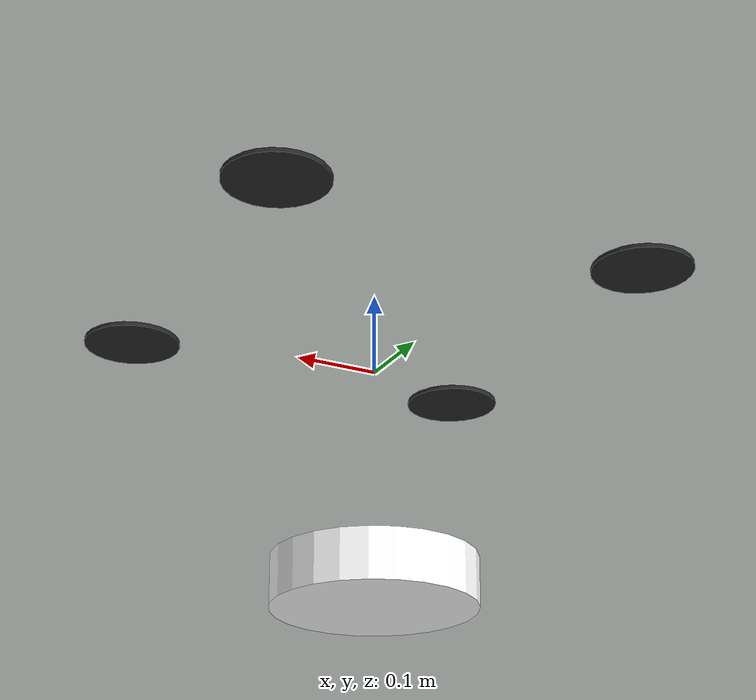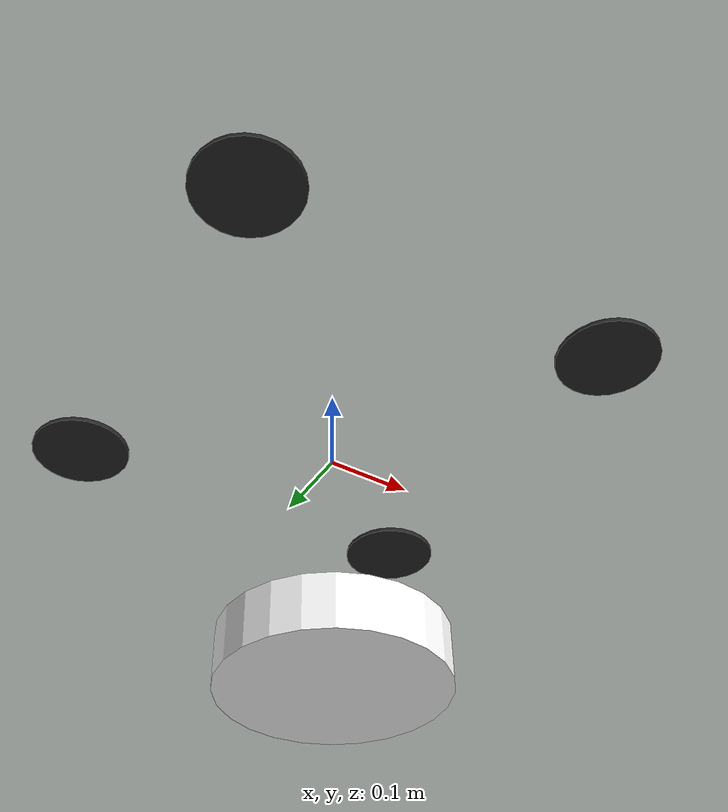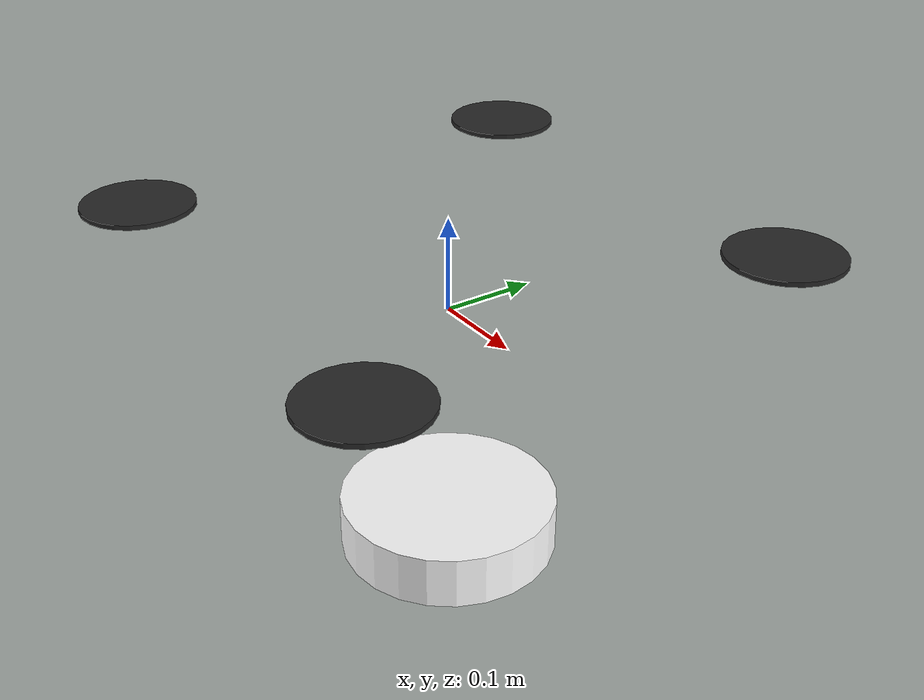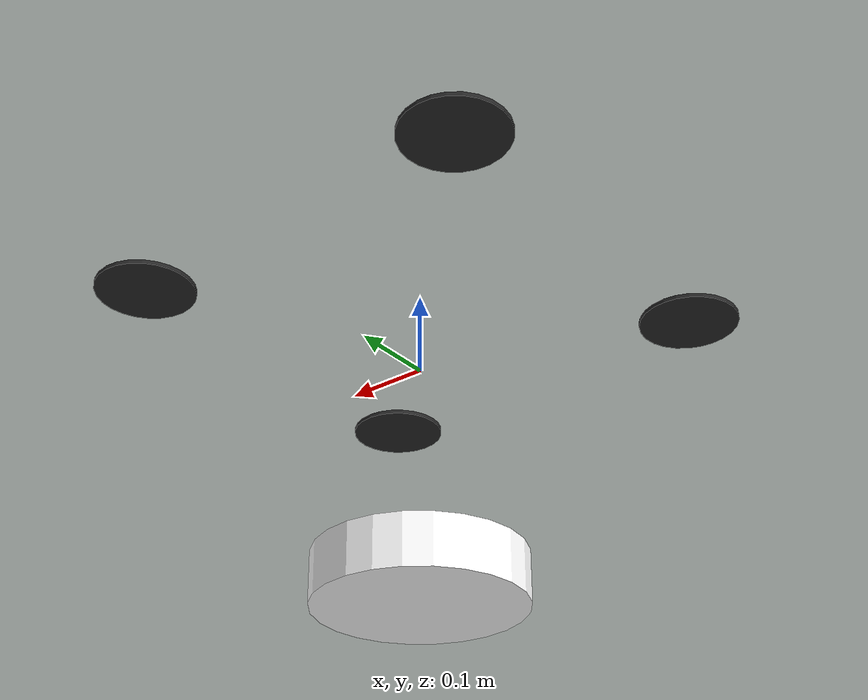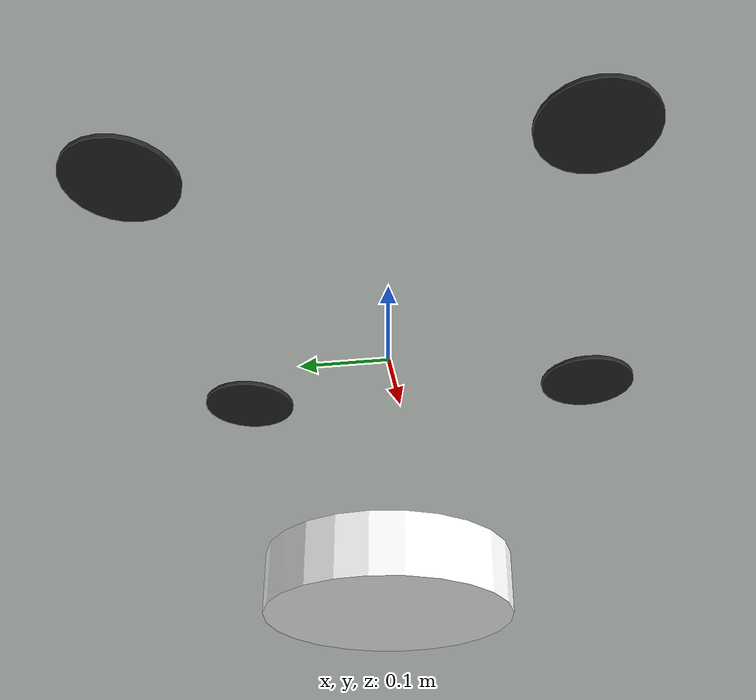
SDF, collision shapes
<?xml version="1.0" encoding="UTF-8"?>
<sdf version="1.11">
  <model name="x650">
    <self_collide>false</self_collide>
    <static>false</static>

    <link name="base_link">
      <inertial>
        <pose>0 0 0 0 0 0</pose>
        <mass>3.0871299224127111</mass>
        <inertia>
          <ixx>0.0057000452252874154</ixx>
          <ixy>-8.1589121398996725e-05</ixy>
          <ixz>0.00039875383293580102</ixz>
          <iyy>0.01291048663697434</iyy>
          <iyz>-0.00015981137616381371</iyz>
          <izz>0.0085467646528533062</izz>
        </inertia>
      </inertial>
      <gravity>true</gravity>
      <velocity_decay />
      <collision name="base_link_collision">
        <pose>0 0 -0.26 0 0 0</pose>  <!-- NOTE: Adjust the pose according to the word surface-->
        <geometry>
          <cylinder>
            <!-- tune to your frame size; small footprint so the craft can lift cleanly -->
            <radius>0.12</radius>
            <length>0.06</length>
          </cylinder>
        </geometry>
        <surface>
          <contact>
            <ode>
              <min_depth>0.001</min_depth>
              <max_vel>0</max_vel>
            </ode>
          </contact>
          <friction>
            <ode />
          </friction>
        </surface>
      </collision>
      <visual name="base_link_visual">
        <pose>0 0 0 0 0 0</pose>
        <geometry>
          <mesh>
            <scale>1 1 1</scale>
            <uri>model://x650/meshes/base_link.stl</uri>
          </mesh>
        </geometry>
        <material>
          <ambient>1 1 1 1</ambient>
          <diffuse>1 1 1 1</diffuse>
          <specular>1 1 1 1</specular>
          <pbr>
            <metal>
              <metalness>1.0</metalness>
              <roughness>0.3</roughness>
            </metal>
          </pbr>
        </material>
      </visual>

      <visual name="base_link_fixed_joint_lump__depth_camera_link_visual_1">
        <pose>0.13758 -0.00058142 -0.0090308 -3.1377 -0.0036204 -0.013619</pose>
        <geometry>
          <mesh>
            <scale>1 1 1</scale>
            <uri>model://x650/meshes/depth_camera_link.stl</uri>
          </mesh>
        </geometry>
        <material>
          <ambient>1 1 1 1</ambient>
          <diffuse>1 1 1 1</diffuse>
          <specular>1 1 1 1</specular>
          <pbr>
            <metal>
              <metalness>0.0</metalness>
              <roughness>0.2</roughness>
            </metal>
          </pbr>
        </material>
      </visual>

      <visual name="base_link_fixed_joint_lump__gps_module_link_visual_2">
        <pose>-0.13598 0.0015189 0.10049 0.0025723 0.004617 -1.8307</pose>
        <geometry>
          <mesh>
            <scale>1 1 1</scale>
            <uri>model://x650/meshes/gps_module_link.stl</uri>
          </mesh>
        </geometry>
        <material>
          <ambient>0.1 0.1 0.1 1</ambient>
          <diffuse>0.1 0.1 0.1 1</diffuse>
          <specular>1 1 1 1</specular>
          <pbr>
            <metal>
              <metalness>0.9</metalness>
              <roughness>0.2</roughness>
            </metal>
          </pbr>
        </material>
      </visual>

      <visual name="base_link_fixed_joint_lump__lidar_link_visual_3">
        <pose>-0.00044268 -0.00016922 0.12747 0.0038504 -0.0036204 -0.013619</pose>
        <geometry>
          <mesh>
            <scale>1 1 1</scale>
            <uri>model://x650/meshes/lidar_link.stl</uri>
          </mesh>
        </geometry>
        <material>
          <ambient>0.8 0.8 0.8 1</ambient>
          <diffuse>0.8 0.8 0.8 1</diffuse>
          <specular>1 1 1 1</specular>
          <pbr>
            <metal>
              <metalness>0.9</metalness>
              <roughness>0.3</roughness>
            </metal>
          </pbr>
        </material>
      </visual>

      <gravity>true</gravity>

      <!-- Sensors -->
      <sensor name="air_pressure_sensor" type="air_pressure">
        <pose relative_to="base_link">0 0 0 0 0 0</pose>
        <always_on>1</always_on>
        <update_rate>75</update_rate>
        <air_pressure>
          <pressure>
            <noise type="gaussian">
              <mean>0</mean>
              <stddev>3</stddev>
            </noise>
          </pressure>
        </air_pressure>
      </sensor>

      <sensor name="magnetometer_sensor" type="magnetometer">
        <pose relative_to="base_link">0 0 0 0 0 0</pose>
        <always_on>1</always_on>
        <update_rate>50</update_rate>
        <magnetometer>
          <x>
            <noise type="gaussian">
              <stddev>0.0001</stddev>
            </noise>
          </x>
          <y>
            <noise type="gaussian">
              <stddev>0.0001</stddev>
            </noise>
          </y>
          <z>
            <noise type="gaussian">
              <stddev>0.0001</stddev>
            </noise>
          </z>
        </magnetometer>
      </sensor>

      <sensor name="imu_sensor" type="imu">
        <pose relative_to="base_link">0 0 0 0 0 0</pose>
        <always_on>true</always_on>
        <update_rate>100</update_rate>
        <imu>
          <angular_velocity>
            <x>
              <noise type="gaussian">
                <mean>0.0</mean>
                <stddev>2e-4</stddev>
              </noise>
            </x>
            <y>
              <noise type="gaussian">
                <mean>0.0</mean>
                <stddev>2e-4</stddev>
              </noise>
            </y>
            <z>
              <noise type="gaussian">
                <mean>0.0</mean>
                <stddev>2e-4</stddev>
              </noise>
            </z>
          </angular_velocity>
          <linear_acceleration>
            <x>
              <noise type="gaussian">
                <mean>0.0</mean>
                <stddev>1.7e-2</stddev>
              </noise>
            </x>
            <y>
              <noise type="gaussian">
                <mean>0.0</mean>
                <stddev>1.7e-2</stddev>
              </noise>
            </y>
            <z>
              <noise type="gaussian">
                <mean>0.0</mean>
                <stddev>1.7e-2</stddev>
              </noise>
            </z>
          </linear_acceleration>
        </imu>
      </sensor>

      <sensor name="navsat_sensor" type="navsat">
        <pose relative_to="base_link">0 0 0 0 0 0</pose>
        <always_on>1</always_on>
        <update_rate>10</update_rate>
        <navsat/>
      </sensor>

      <!-- RGB-D camera -->
      <sensor name="rgbd_cam" type="rgbd_camera">
        <pose>0 0 0 0 0 0</pose>
        <camera>
          <horizontal_fov>1.2</horizontal_fov>
          <image>
            <width>600</width>
            <height>480</height>
            <format>RGB_INT8</format>
          </image>
          <clip>
            <near>0.6</near>
            <far>100.0</far>
          </clip>
          <point_cloud>true</point_cloud>
        </camera>
        <always_on>true</always_on>
        <topic>camera</topic>
        <update_rate>100</update_rate>
        <visualize>true</visualize>
      </sensor>

      <!-- 2D LiDAR -->
      <sensor name="laser_sensor" type="gpu_lidar">
        <pose>-0.00044268 -0.00016922 0.12747 0.0038504 -0.0036204 -0.013619</pose>
        <topic>scan</topic>
        <update_rate>100</update_rate>
        <always_on>true</always_on>
        <visualize>true</visualize>
        <gz_frame_id>lidar_link</gz_frame_id>
        <lidar>
          <scan>
            <horizontal>
              <samples>360</samples>
              <resolution>1</resolution>
              <min_angle>0.000000</min_angle>
              <max_angle>6.280000</max_angle>
            </horizontal>
            <vertical>
              <samples>1</samples>
              <resolution>1</resolution>
              <min_angle>0</min_angle>
              <max_angle>0</max_angle>
            </vertical>
          </scan>
          <range>
            <min>0.2</min>
            <max>12.0</max>
            <resolution>0.001</resolution>
          </range>
          <noise>
            <type>gaussian</type>
            <mean>0.0</mean>
            <stddev>0.01</stddev>
          </noise>
        </lidar>
      </sensor>
    </link>

    <plugin filename="gz-sim-contact-system" name="gz::sim::systems::Contact"/>
    <plugin filename="gz-sim-imu-system" name="gz::sim::systems::Imu"/>
    <plugin filename="gz-sim-air-pressure-system" name="gz::sim::systems::AirPressure"/>
    <plugin filename="gz-sim-air-speed-system" name="gz::sim::systems::AirSpeed"/>
    <plugin filename="gz-sim-apply-link-wrench-system" name="gz::sim::systems::ApplyLinkWrench"/>
    <plugin filename="gz-sim-navsat-system" name="gz::sim::systems::NavSat"/>
    <plugin filename="gz-sim-magnetometer-system" name="gz::sim::systems::Magnetometer"/>

    <!-- Motors -->
    <joint name="front_prop_cw_joint" type="revolute">
      <pose relative_to="base_link">0.23106 0.22649 0.090005 0 0 0</pose>
      <parent>base_link</parent>
      <child>front_prop_cw_link</child>
      <axis>
        <xyz>0 0 1</xyz>
        <limit>
          <lower>-1e16</lower>
          <upper>1e16</upper>
        </limit>
        <dynamics>
          <spring_reference>0</spring_reference>
          <spring_stiffness>0</spring_stiffness>
        </dynamics>
      </axis>
    </joint>
    <link name="front_prop_cw_link">
      <gravity>true</gravity>
      <self_collide>false</self_collide>
      <velocity_decay />
      <pose relative_to="front_prop_cw_joint">0 0 0 0 0 0</pose>
      <inertial>
        <pose>1.89889458346304e-06 -0.000131188965704798 0.00588670324654172 0 0 0</pose>
        <mass>0.0232860557198823</mass>
        <inertia>
          <ixx>6.4876167457581197e-07</ixx>
          <ixy>-1.71419194967408e-07</ixy>
          <ixz>1.28654962833368e-10</ixz>
          <iyy>2.84759689374051e-05</iyy>
          <iyz>5.3921637440474097e-11</iyz>
          <izz>2.9078525271559699e-05</izz>
        </inertia>
      </inertial>
      <collision name="front_prop_cw_link_collision">
        <pose>0 0 0 0 0 0</pose>
        <geometry>
          <cylinder>
            <radius>0.06</radius>
            <length>0.005</length>
          </cylinder>
        </geometry>
        <surface>
          <contact>
            <ode>
              <min_depth>0.001</min_depth>
              <max_vel>0</max_vel>
            </ode>
          </contact>
          <friction>
            <ode />
          </friction>
        </surface>
      </collision>
      <visual name="front_prop_cw_link_visual">
        <pose>0 0 0 0 0 0</pose>
        <geometry>
          <mesh>
            <scale>1 1 1</scale>
            <uri>model://x650/meshes/front_prop_cw_link.stl</uri>
          </mesh>
        </geometry>
        <material>
          <ambient>0.05 0.05 0.05 1</ambient>
          <diffuse>0.15 0.15 0.15 1</diffuse>
          <specular>1 1 1 1</specular>
          <pbr>
            <metal>
              <metalness>1.0</metalness>
              <roughness>0.2</roughness>
            </metal>
          </pbr>
        </material>
      </visual>
    </link>

    <joint name="back_prop_cw_joint" type="revolute">
      <pose relative_to="base_link">-0.23496 -0.22701 0.086701 0 0 0</pose>
      <parent>base_link</parent>
      <child>back_prop_cw_link</child>
      <axis>
        <xyz>0 0 1</xyz>
        <limit>
          <lower>-1e+16</lower>
          <upper>1e+16</upper>
        </limit>
        <dynamics>
          <spring_reference>0</spring_reference>
          <spring_stiffness>0</spring_stiffness>
        </dynamics>
      </axis>
    </joint>
    <link name="back_prop_cw_link">
      <gravity>true</gravity>
      <self_collide>false</self_collide>
      <velocity_decay />
      <pose relative_to="back_prop_cw_joint">0 0 0 0 0 0</pose>
      <inertial>
        <pose>2.5989393493130999e-06 -0.00013126973913305 0.00575531220060893 0 0 0</pose>
        <mass>0.0232866239768517</mass>
        <inertia>
          <ixx>6.4878960917419903e-07</ixx>
          <ixy>-1.71375304374027e-07</ixy>
          <ixz>1.27526457477932e-10</ixz>
          <iyy>2.8477411358960901e-05</iyy>
          <iyz>5.4816733334785403e-11</iyz>
          <izz>2.90799957464871e-05</izz>
        </inertia>
      </inertial>
      <collision name="back_prop_cw_link_collision">
        <pose>0 0 0 0 0 0</pose>
        <geometry>
          <cylinder>
            <radius>0.06</radius>
            <length>0.005</length>
          </cylinder>
        </geometry>
        <surface>
          <contact>
            <ode>
              <min_depth>0.001</min_depth>
              <max_vel>0</max_vel>
            </ode>
          </contact>
          <friction>
            <ode />
          </friction>
        </surface>
      </collision>
      <visual name="back_prop_cw_link_visual">
        <pose>0 0 0 0 0 0</pose>
        <geometry>
          <mesh>
            <scale>1 1 1</scale>
            <uri>model://x650/meshes/back_prop_cw_link.stl</uri>
          </mesh>
        </geometry>
        <material>
          <ambient>0.05 0.05 0.05 1</ambient>
          <diffuse>0.15 0.15 0.15 1</diffuse>
          <specular>1 1 1 1</specular>
          <pbr>
            <metal>
              <metalness>1.0</metalness>
              <roughness>0.2</roughness>
            </metal>
          </pbr>
        </material>
      </visual>
    </link>

    <joint name="front_prop_ccw_joint" type="revolute">
      <pose relative_to="base_link">0.22481 -0.23326 0.086028 0 0 0</pose>
      <parent>base_link</parent>
      <child>front_prop_ccw_link</child>
      <axis>
        <xyz>0 0 1</xyz>
        <limit>
          <lower>-1e+16</lower>
          <upper>1e+16</upper>
        </limit>
        <dynamics>
          <spring_reference>0</spring_reference>
          <spring_stiffness>0</spring_stiffness>
        </dynamics>
      </axis>
    </joint>
    <link name="front_prop_ccw_link">
      <gravity>true</gravity>
      <self_collide>false</self_collide>
      <velocity_decay />
      <pose relative_to="front_prop_ccw_joint">0 0 0 0 0 0</pose>
      <inertial>
        <pose>1.9285e-05 -0.0005696 0.0086392 0 0 0</pose>
        <mass>0.023288</mass>
        <inertia>
          <ixx>7.8138e-07</ixx>
          <ixy>-1.9303e-06</ixy>
          <ixz>-5.8432e-08</ixz>
          <iyy>2.8365e-05</iyy>
          <iyz>-3.958e-08</iyz>
          <izz>2.9095e-05</izz>
        </inertia>
      </inertial>
      <collision name="front_prop_ccw_link_collision">
        <pose>0 0 0 0 0 0</pose>
        <geometry>
          <cylinder>
            <radius>0.06</radius>
            <length>0.005</length>
          </cylinder>
        </geometry>
        <surface>
          <contact>
            <ode>
              <min_depth>0.001</min_depth>
              <max_vel>0</max_vel>
            </ode>
          </contact>
          <friction>
            <ode />
          </friction>
        </surface>
      </collision>
      <visual name="front_prop_ccw_link_visual">
        <pose>0 0 0 0 0 0</pose>
        <geometry>
          <mesh>
            <scale>1 1 1</scale>
            <uri>model://x650/meshes/front_prop_ccw_link.stl</uri>
          </mesh>
        </geometry>
        <material>
          <ambient>0.05 0.05 0.05 1</ambient>
          <diffuse>0.15 0.15 0.15 1</diffuse>
          <specular>1 1 1 1</specular>
          <pbr>
            <metal>
              <metalness>1.0</metalness>
              <roughness>0.2</roughness>
            </metal>
          </pbr>
        </material>
      </visual>
    </link>

    <joint name="back_prop_ccw_joint" type="revolute">
      <pose relative_to="base_link">-0.2287 0.23276 0.086501 0 0 0</pose>
      <parent>base_link</parent><child>back_prop_ccw_link</child>
      <axis>
        <xyz>0 0 1</xyz>
        <limit>
          <lower>-1e+16</lower>
          <upper>1e+16</upper>
        </limit>
        <dynamics>
          <spring_reference>0</spring_reference>
          <spring_stiffness>0</spring_stiffness>
        </dynamics>
      </axis>
    </joint>
    <link name="back_prop_ccw_link">
      <gravity>true</gravity>
      <self_collide>false</self_collide>
      <velocity_decay />
      <pose relative_to="back_prop_ccw_joint">0 0 0 0 0 0</pose>
      <inertial>
        <pose>1.9244838497967098e-05 -0.00054790647153496496 0.0082724928504486796 0 0 0</pose>
        <mass>0.023287603511287301</mass>
        <inertia>
          <ixx>7.8128240375094601e-07</ixx>
          <ixy>-1.9296761476329199e-06</ixy>
          <ixz>-5.8395414548840802e-08</ixz>
          <iyy>2.8362782418367299e-05</iyy>
          <iyz>-3.9575409052290702e-08</iyz>
          <izz>2.90934055502375e-05</izz>
        </inertia>
      </inertial>
      <collision name="back_prop_ccw_link_collision">
        <pose>0 0 0 0 0 0</pose>
        <geometry>
          <cylinder>
            <radius>0.06</radius>
            <length>0.005</length>
          </cylinder>
        </geometry>
        <surface>
          <contact>
            <ode>
              <min_depth>0.001</min_depth>
              <max_vel>0</max_vel>
            </ode>
          </contact>
          <friction>
            <ode />
          </friction>
        </surface>
      </collision>
      <visual name="back_prop_ccw_link_visual">
        <pose>0 0 0 0 0 0</pose>
        <geometry>
          <mesh>
            <scale>1 1 1</scale>
            <uri>model://x650/meshes/back_prop_ccw_link.stl</uri>
          </mesh>
        </geometry>
        <material>
          <ambient>0.05 0.05 0.05 1</ambient>
          <diffuse>0.15 0.15 0.15 1</diffuse>
          <specular>1 1 1 1</specular>
          <pbr>
            <metal>
              <metalness>1.0</metalness>
              <roughness>0.2</roughness>
            </metal>
          </pbr>
        </material>
      </visual>
    </link>

    <!-- Multicopter motor plugins -->

    <!-- PX4 motor 1: FRONT RIGHT, CCW -->
    <plugin name="gz::sim::systems::MulticopterMotorModel" filename="gz-sim-multicopter-motor-model-system">
      <jointName>front_prop_ccw_joint</jointName>
      <linkName>front_prop_ccw_link</linkName>
      <turningDirection>ccw</turningDirection>
      <timeConstantUp>0.04</timeConstantUp>
      <timeConstantDown>0.06</timeConstantDown>
      <maxRotVelocity>1200</maxRotVelocity>
      <motorConstant>1.1e-05</motorConstant>
      <momentConstant>1.3e-06</momentConstant>
      <commandSubTopic>command/motor_speed</commandSubTopic>
      <motorNumber>0</motorNumber>
      <rotorDragCoefficient>8.06428e-05</rotorDragCoefficient>
      <rollingMomentCoefficient>1e-06</rollingMomentCoefficient>
      <motorType>velocity</motorType>
    </plugin>

    <!-- PX4 motor 2: BACK LEFT, CCW -->
    <plugin name="gz::sim::systems::MulticopterMotorModel" filename="gz-sim-multicopter-motor-model-system">
      <jointName>back_prop_ccw_joint</jointName>
      <linkName>back_prop_ccw_link</linkName>
      <turningDirection>ccw</turningDirection>
      <timeConstantUp>0.04</timeConstantUp>
      <timeConstantDown>0.06</timeConstantDown>
      <maxRotVelocity>1200</maxRotVelocity>
      <motorConstant>1.1e-05</motorConstant>
      <momentConstant>1.3e-06</momentConstant>
      <commandSubTopic>command/motor_speed</commandSubTopic>
      <motorNumber>1</motorNumber>
      <rotorDragCoefficient>8.06428e-05</rotorDragCoefficient>
      <rollingMomentCoefficient>1e-06</rollingMomentCoefficient>
      <motorType>velocity</motorType>
    </plugin>

    <!-- PX4 motor 3: FRONT LEFT, CW -->
    <plugin name="gz::sim::systems::MulticopterMotorModel" filename="gz-sim-multicopter-motor-model-system">
      <jointName>front_prop_cw_joint</jointName>
      <linkName>front_prop_cw_link</linkName>
      <turningDirection>cw</turningDirection>
      <timeConstantUp>0.04</timeConstantUp>
      <timeConstantDown>0.06</timeConstantDown>
      <maxRotVelocity>1200</maxRotVelocity>
      <motorConstant>1.1e-05</motorConstant>
      <momentConstant>1.3e-06</momentConstant>
      <commandSubTopic>command/motor_speed</commandSubTopic>
      <motorNumber>2</motorNumber>
      <rotorDragCoefficient>8.06428e-05</rotorDragCoefficient>
      <rollingMomentCoefficient>1e-06</rollingMomentCoefficient>
      <motorType>velocity</motorType>
    </plugin>

    <!-- PX4 motor 4: BACK RIGHT, CW -->
    <plugin name="gz::sim::systems::MulticopterMotorModel" filename="gz-sim-multicopter-motor-model-system">
      <jointName>back_prop_cw_joint</jointName>
      <linkName>back_prop_cw_link</linkName>
      <turningDirection>cw</turningDirection>
      <timeConstantUp>0.04</timeConstantUp>
      <timeConstantDown>0.06</timeConstantDown>
      <maxRotVelocity>1200</maxRotVelocity>
      <motorConstant>1.1e-05</motorConstant>
      <momentConstant>1.3e-06</momentConstant>
      <commandSubTopic>command/motor_speed</commandSubTopic>
      <motorNumber>3</motorNumber>
      <rotorDragCoefficient>8.06428e-05</rotorDragCoefficient>
      <rollingMomentCoefficient>1e-06</rollingMomentCoefficient>
      <motorType>velocity</motorType>
    </plugin>

    <plugin filename="MotorFailurePlugin" name="gz::sim::systems::MotorFailureSystem"/>
    <plugin filename="gz-sim-odometry-publisher-system" name="gz::sim::systems::OdometryPublisher">
      <dimensions>3</dimensions>
    </plugin>

  </model>
</sdf>
